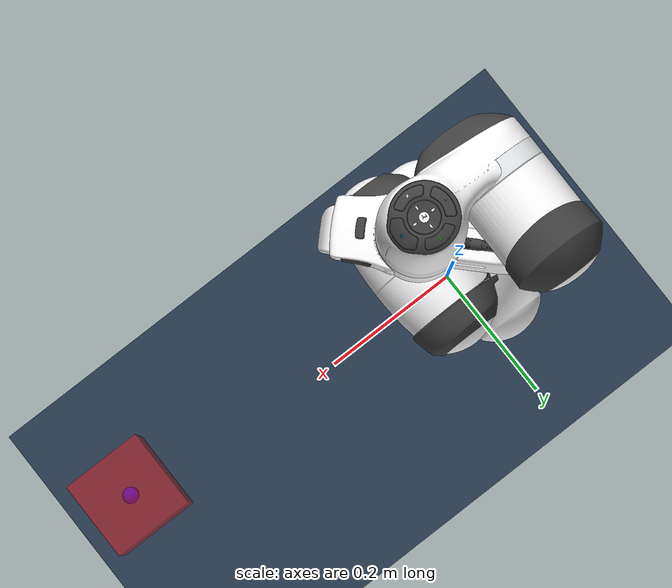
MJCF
<mujoco model="panda scene">
  <include file="panda_nohand.xml"/>

  <statistic center="0.3 0 0.35" extent="0.8" meansize="0.05"/>

  <visual>
    <headlight diffuse="0.8 0.8 0.8" ambient="0.1 0.1 0.1" specular="0 0 0"/>
    <global azimuth="150" elevation="-25"/>
  </visual>

  <asset>
    <texture name="grid" type="2d" builtin="checker" rgb1=".2 .3 .4" rgb2=".1 0.15 0.2" width="128" height="128"
      mark="cross" markrgb=".8 .8 .8"/>
    <material name="grid" texture="grid" texrepeat="10 10" texuniform="true"/>
  </asset>

  <worldbody>
    <light pos="0 0 1.5" dir="0 0 -1" directional="true"/>
    <geom name="floor" size="1 1 0.01" type="plane" material="grid"/>
    <body name="target" pos="0.5 0 .5" quat="0 1 0 0" mocap="true">
      <geom type="box" size=".05 .05 .05" contype="0" conaffinity="0" rgba=".9 .1 .1 .5"/>
      <site type="sphere" size="0.01" rgba="0 0 1 1" group="1"/>
    </body>
  </worldbody>
</mujoco>

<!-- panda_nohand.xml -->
<mujoco model="panda nohand">
  <compiler angle="radian" meshdir="assets" autolimits="true"/>

  <option integrator="implicitfast"/>

  <default>
    <default class="panda">
      <joint range="-2.8973 2.8973"/>
      <default class="panda/visual">
        <geom type="mesh" contype="0" conaffinity="0" group="2"/>
      </default>
      <default class="panda/collision">
        <geom type="mesh" group="3"/>
        <default class="panda/fingertip_pad_collision_1">
          <geom type="box" size="0.0085 0.004 0.0085" pos="0 0.0055 0.0445"/>
        </default>
        <default class="panda/fingertip_pad_collision_2">
          <geom type="box" size="0.003 0.002 0.003" pos="0.0055 0.002 0.05"/>
        </default>
        <default class="panda/fingertip_pad_collision_3">
          <geom type="box" size="0.003 0.002 0.003" pos="-0.0055 0.002 0.05"/>
        </default>
        <default class="panda/fingertip_pad_collision_4">
          <geom type="box" size="0.003 0.002 0.0035" pos="0.0055 0.002 0.0395"/>
        </default>
        <default class="panda/fingertip_pad_collision_5">
          <geom type="box" size="0.003 0.002 0.0035" pos="-0.0055 0.002 0.0395"/>
        </default>
      </default>
      <default class="position_actuation">
        <default class="big_joint">
          <position kp="2000" kv="200"/>
        </default>
        <default class="small_joint">
          <position kp="500" kv="50"/>
        </default>
      </default>
    </default>
  </default>

  <asset>
    <material name="white" rgba="1 1 1 1"/>
    <material name="off_white" rgba="0.901961 0.921569 0.929412 1"/>
    <material name="dark_grey" rgba="0.25 0.25 0.25 1"/>
    <material name="green" rgba="0 1 0 1"/>
    <material name="light_blue" rgba="0.039216 0.541176 0.780392 1"/>
    <material name="black" rgba="0.25 0.25 0.25 1"/>

    <!-- Collision meshes -->
    <mesh name="link0_c" file="link0.stl"/>
    <mesh name="link1_c" file="link1.stl"/>
    <mesh name="link2_c" file="link2.stl"/>
    <mesh name="link3_c" file="link3.stl"/>
    <mesh name="link4_c" file="link4.stl"/>
    <mesh name="link5_c0" file="link5_collision_0.obj"/>
    <mesh name="link5_c1" file="link5_collision_1.obj"/>
    <mesh name="link5_c2" file="link5_collision_2.obj"/>
    <mesh name="link6_c" file="link6.stl"/>
    <mesh name="link7_c" file="link7.stl"/>
    <mesh name="hand_c" file="hand.stl"/>

    <!-- Visual meshes -->
    <mesh file="link0_0.obj"/>
    <mesh file="link0_1.obj"/>
    <mesh file="link0_2.obj"/>
    <mesh file="link0_3.obj"/>
    <mesh file="link0_4.obj"/>
    <mesh file="link0_5.obj"/>
    <mesh file="link0_7.obj"/>
    <mesh file="link0_8.obj"/>
    <mesh file="link0_9.obj"/>
    <mesh file="link0_10.obj"/>
    <mesh file="link0_11.obj"/>
    <mesh file="link1.obj"/>
    <mesh file="link2.obj"/>
    <mesh file="link3_0.obj"/>
    <mesh file="link3_1.obj"/>
    <mesh file="link3_2.obj"/>
    <mesh file="link3_3.obj"/>
    <mesh file="link4_0.obj"/>
    <mesh file="link4_1.obj"/>
    <mesh file="link4_2.obj"/>
    <mesh file="link4_3.obj"/>
    <mesh file="link5_0.obj"/>
    <mesh file="link5_1.obj"/>
    <mesh file="link5_2.obj"/>
    <mesh file="link6_0.obj"/>
    <mesh file="link6_1.obj"/>
    <mesh file="link6_2.obj"/>
    <mesh file="link6_3.obj"/>
    <mesh file="link6_4.obj"/>
    <mesh file="link6_5.obj"/>
    <mesh file="link6_6.obj"/>
    <mesh file="link6_7.obj"/>
    <mesh file="link6_8.obj"/>
    <mesh file="link6_9.obj"/>
    <mesh file="link6_10.obj"/>
    <mesh file="link6_11.obj"/>
    <mesh file="link6_12.obj"/>
    <mesh file="link6_13.obj"/>
    <mesh file="link6_14.obj"/>
    <mesh file="link6_15.obj"/>
    <mesh file="link6_16.obj"/>
    <mesh file="link7_0.obj"/>
    <mesh file="link7_1.obj"/>
    <mesh file="link7_2.obj"/>
    <mesh file="link7_3.obj"/>
    <mesh file="link7_4.obj"/>
    <mesh file="link7_5.obj"/>
    <mesh file="link7_6.obj"/>
    <mesh file="link7_7.obj"/>
    <mesh file="hand_0.obj"/>
    <mesh file="hand_1.obj"/>
    <mesh file="hand_2.obj"/>
    <mesh file="hand_3.obj"/>
    <mesh file="hand_4.obj"/>
    <mesh file="finger_0.obj"/>
    <mesh file="finger_1.obj"/>
  </asset>

  <worldbody>
    <body name="link0" childclass="panda">
      <inertial mass="0.629769" pos="-0.041018 -0.00014 0.049974"
        fullinertia="0.00315 0.00388 0.004285 8.2904e-7 0.00015 8.2299e-6"/>
      <geom mesh="link0_0" material="off_white" class="panda/visual"/>
      <geom mesh="link0_1" material="dark_grey" class="panda/visual"/>
      <geom mesh="link0_2" material="off_white" class="panda/visual"/>
      <geom mesh="link0_3" material="dark_grey" class="panda/visual"/>
      <geom mesh="link0_4" material="off_white" class="panda/visual"/>
      <geom mesh="link0_5" material="dark_grey" class="panda/visual"/>
      <geom mesh="link0_7" material="white" class="panda/visual"/>
      <geom mesh="link0_8" material="white" class="panda/visual"/>
      <geom mesh="link0_9" material="dark_grey" class="panda/visual"/>
      <geom mesh="link0_10" material="off_white" class="panda/visual"/>
      <geom mesh="link0_11" material="white" class="panda/visual"/>
      <geom mesh="link0_c" class="panda/collision"/>
      <body name="link1" pos="0 0 0.333">
        <inertial mass="4.970684" pos="0.003875 0.002081 -0.04762"
          fullinertia="0.70337 0.70661 0.0091170 -0.00013900 0.0067720 0.019169"/>
        <joint name="joint1"/>
        <geom material="white" mesh="link1" class="panda/visual"/>
        <geom mesh="link1_c" class="panda/collision"/>
        <body name="link2" quat="1 -1 0 0">
          <inertial mass="0.646926" pos="-0.003141 -0.02872 0.003495"
            fullinertia="0.0079620 2.8110e-2 2.5995e-2 -3.925e-3 1.0254e-2 7.04e-4"/>
          <joint name="joint2" range="-1.7628 1.7628"/>
          <geom material="white" mesh="link2" class="panda/visual"/>
          <geom mesh="link2_c" class="panda/collision"/>
          <body name="link3" pos="0 -0.316 0" quat="1 1 0 0">
            <joint name="joint3"/>
            <inertial mass="3.228604" pos="2.7518e-2 3.9252e-2 -6.6502e-2"
              fullinertia="3.7242e-2 3.6155e-2 1.083e-2 -4.761e-3 -1.1396e-2 -1.2805e-2"/>
            <geom mesh="link3_0" material="white" class="panda/visual"/>
            <geom mesh="link3_1" material="white" class="panda/visual"/>
            <geom mesh="link3_2" material="white" class="panda/visual"/>
            <geom mesh="link3_3" material="dark_grey" class="panda/visual"/>
            <geom mesh="link3_c" class="panda/collision"/>
            <body name="link4" pos="0.0825 0 0" quat="1 1 0 0">
              <inertial mass="3.587895" pos="-5.317e-2 1.04419e-1 2.7454e-2"
                fullinertia="2.5853e-2 1.9552e-2 2.8323e-2 7.796e-3 -1.332e-3 8.641e-3"/>
              <joint name="joint4" range="-3.0718 -0.0698"/>
              <geom mesh="link4_0" material="white" class="panda/visual"/>
              <geom mesh="link4_1" material="white" class="panda/visual"/>
              <geom mesh="link4_2" material="dark_grey" class="panda/visual"/>
              <geom mesh="link4_3" material="white" class="panda/visual"/>
              <geom mesh="link4_c" class="panda/collision"/>
              <body name="link5" pos="-0.0825 0.384 0" quat="1 -1 0 0">
                <inertial mass="1.225946" pos="-1.1953e-2 4.1065e-2 -3.8437e-2"
                  fullinertia="3.5549e-2 2.9474e-2 8.627e-3 -2.117e-3 -4.037e-3 2.29e-4"/>
                <joint name="joint5"/>
                <geom mesh="link5_0" material="dark_grey" class="panda/visual"/>
                <geom mesh="link5_1" material="white" class="panda/visual"/>
                <geom mesh="link5_2" material="white" class="panda/visual"/>
                <geom mesh="link5_c0" class="panda/collision"/>
                <geom mesh="link5_c1" class="panda/collision"/>
                <geom mesh="link5_c2" class="panda/collision"/>
                <body name="link6" quat="1 1 0 0">
                  <inertial mass="1.666555" pos="6.0149e-2 -1.4117e-2 -1.0517e-2"
                    fullinertia="1.964e-3 4.354e-3 5.433e-3 1.09e-4 -1.158e-3 3.41e-4"/>
                  <joint name="joint6" range="-0.0175 3.7525"/>
                  <geom mesh="link6_0" material="off_white" class="panda/visual"/>
                  <geom mesh="link6_1" material="white" class="panda/visual"/>
                  <geom mesh="link6_2" material="dark_grey" class="panda/visual"/>
                  <geom mesh="link6_3" material="white" class="panda/visual"/>
                  <geom mesh="link6_4" material="white" class="panda/visual"/>
                  <geom mesh="link6_5" material="white" class="panda/visual"/>
                  <geom mesh="link6_6" material="white" class="panda/visual"/>
                  <geom mesh="link6_7" material="light_blue" class="panda/visual"/>
                  <geom mesh="link6_8" material="light_blue" class="panda/visual"/>
                  <geom mesh="link6_9" material="dark_grey" class="panda/visual"/>
                  <geom mesh="link6_10" material="dark_grey" class="panda/visual"/>
                  <geom mesh="link6_11" material="white" class="panda/visual"/>
                  <geom mesh="link6_12" material="green" class="panda/visual"/>
                  <geom mesh="link6_13" material="white" class="panda/visual"/>
                  <geom mesh="link6_14" material="dark_grey" class="panda/visual"/>
                  <geom mesh="link6_15" material="dark_grey" class="panda/visual"/>
                  <geom mesh="link6_16" material="white" class="panda/visual"/>
                  <geom mesh="link6_c" class="panda/collision"/>
                  <body name="link7" pos="0.088 0 0" quat="1 1 0 0">
                    <inertial mass="7.35522e-01" pos="1.0517e-2 -4.252e-3 6.1597e-2"
                      fullinertia="1.2516e-2 1.0027e-2 4.815e-3 -4.28e-4 -1.196e-3 -7.41e-4"/>
                    <joint name="joint7"/>
                    <geom mesh="link7_0" material="white" class="panda/visual"/>
                    <geom mesh="link7_1" material="dark_grey" class="panda/visual"/>
                    <geom mesh="link7_2" material="dark_grey" class="panda/visual"/>
                    <geom mesh="link7_3" material="dark_grey" class="panda/visual"/>
                    <geom mesh="link7_4" material="dark_grey" class="panda/visual"/>
                    <geom mesh="link7_5" material="dark_grey" class="panda/visual"/>
                    <geom mesh="link7_6" material="dark_grey" class="panda/visual"/>
                    <geom mesh="link7_7" material="white" class="panda/visual"/>
                    <geom mesh="link7_c" class="panda/collision"/>
                    <body name="hand" pos="0 0 0.107" quat="0.9238795 0 0 -0.3826834">
                      <site name="attachment_site" rgba="1 0 0 1" size="0.01" group="1" quat="0 0 0 1"/>
                      <inertial mass="0.73" pos="-0.01 0 0.03" diaginertia="0.001 0.0025 0.0017"/>
                      <geom mesh="hand_0" material="off_white" class="panda/visual"/>
                      <geom mesh="hand_1" material="black" class="panda/visual"/>
                      <geom mesh="hand_2" material="black" class="panda/visual"/>
                      <geom mesh="hand_3" material="white" class="panda/visual"/>
                      <geom mesh="hand_4" material="off_white" class="panda/visual"/>
                      <geom mesh="hand_c" class="panda/collision"/>
                      <body name="left_finger" pos="0 0 0.0584">
                        <inertial mass="0.015" pos="0 0 0" diaginertia="2.375e-6 2.375e-6 7.5e-7"/>
                        <geom mesh="finger_0" material="off_white" class="panda/visual"/>
                        <geom mesh="finger_1" material="black" class="panda/visual"/>
                        <geom mesh="finger_0" class="panda/collision"/>
                        <geom class="panda/fingertip_pad_collision_1"/>
                        <geom class="panda/fingertip_pad_collision_2"/>
                        <geom class="panda/fingertip_pad_collision_3"/>
                        <geom class="panda/fingertip_pad_collision_4"/>
                        <geom class="panda/fingertip_pad_collision_5"/>
                      </body>
                      <body name="right_finger" pos="0 0 0.0584" quat="0 0 0 1">
                        <inertial mass="0.015" pos="0 0 0" diaginertia="2.375e-6 2.375e-6 7.5e-7"/>
                        <geom mesh="finger_0" material="off_white" class="panda/visual"/>
                        <geom mesh="finger_1" material="black" class="panda/visual"/>
                        <geom mesh="finger_0" class="panda/collision"/>
                        <geom class="panda/fingertip_pad_collision_1"/>
                        <geom class="panda/fingertip_pad_collision_2"/>
                        <geom class="panda/fingertip_pad_collision_3"/>
                        <geom class="panda/fingertip_pad_collision_4"/>
                        <geom class="panda/fingertip_pad_collision_5"/>
                      </body>
                    </body>
                  </body>
                </body>
              </body>
            </body>
          </body>
        </body>
      </body>
    </body>
  </worldbody>

  <actuator>
    <position class="big_joint" name="actuator1" joint="joint1" forcerange="-87 87" ctrlrange="-2.8973 2.8973"/>
    <position class="big_joint" name="actuator2" joint="joint2" forcerange="-87 87" ctrlrange="-1.7628 1.7628"/>
    <position class="big_joint" name="actuator3" joint="joint3" forcerange="-87 87" ctrlrange="-2.8973 2.8973"/>
    <position class="big_joint" name="actuator4" joint="joint4" forcerange="-87 87" ctrlrange="-3.0718 -0.0698"/>
    <position class="small_joint" name="actuator5" joint="joint5" forcerange="-12 12" ctrlrange="-2.8973 2.8973"/>
    <position class="small_joint" name="actuator6" joint="joint6" forcerange="-12 12" ctrlrange="-0.0175 3.7525"/>
    <position class="small_joint" name="actuator7" joint="joint7" forcerange="-12 12" ctrlrange="-2.8973 2.8973"/>
  </actuator>

  <keyframe>
    <key name="home" qpos="0 0 0 -1.57079 0 1.57079 -0.7853" ctrl="0 0 0 -1.57079 0 1.57079 -0.7853"/>
  </keyframe>
</mujoco>
